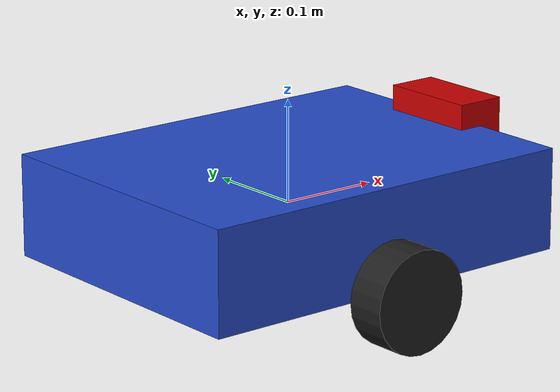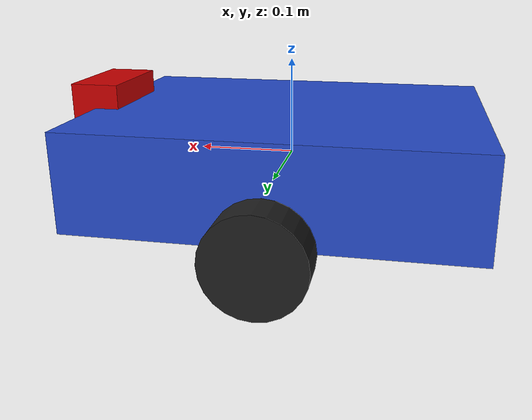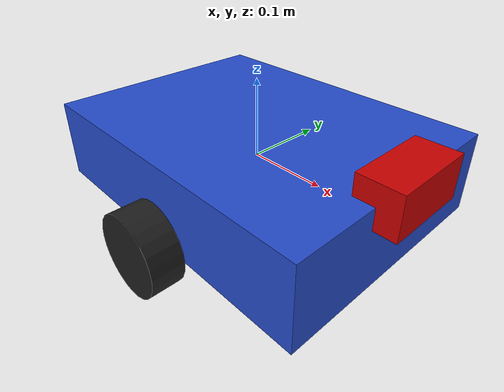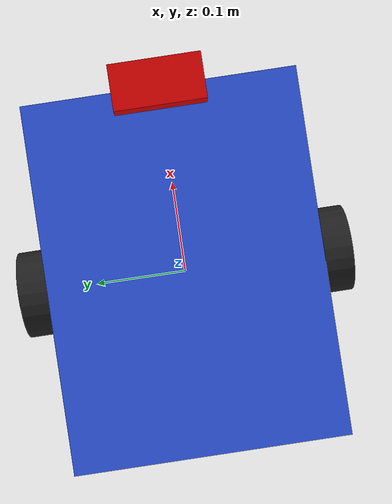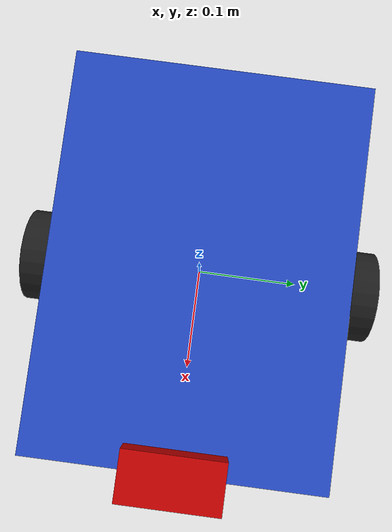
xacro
<?xml version="1.0"?>
<robot name="gesture_robot" xmlns:xacro="http://www.ros.org/wiki/xacro">

  <!-- ── Proprietà ──────────────────────────────────────────────────────── -->
  <xacro:property name="base_length"  value="0.4"/>
  <xacro:property name="base_width"   value="0.3"/>
  <xacro:property name="base_height"  value="0.1"/>
  <xacro:property name="wheel_radius" value="0.05"/>
  <xacro:property name="wheel_width"  value="0.04"/>

<!-- Materiale -->
  <material name="red">
    <color rgba="0.8 0.0 0.0 1.0"/>
  </material>

  <!-- Naso frontale -->
  <link name="front_marker">
    <visual>
      <geometry>
        <box size="0.05 0.1 0.05"/>
      </geometry>
      <material name="red"/>
    </visual>
  </link>

  <joint name="front_marker_joint" type="fixed">
    <parent link="base_link"/>
    <child link="front_marker"/>
    <origin xyz="${base_length/2} 0 ${base_height/2}" rpy="0 0 0"/>
  </joint>

  <!-- ── Base link ──────────────────────────────────────────────────────── -->
  <link name="base_link">
    <visual>
      <geometry>
        <box size="${base_length} ${base_width} ${base_height}"/>
      </geometry>
      <material name="blue"/>
    </visual>
    <collision>
      <geometry>
        <box size="${base_length} ${base_width} ${base_height}"/>
      </geometry>
    </collision>
    <inertial>
      <mass value="1.0"/>
      <inertia ixx="0.01" ixy="0" ixz="0" iyy="0.01" iyz="0" izz="0.01"/>
    </inertial>
  </link>

  <!-- ── Ruota sinistra ─────────────────────────────────────────────────── -->
  <link name="left_wheel">
    <visual>
      <geometry>
        <cylinder radius="${wheel_radius}" length="${wheel_width}"/>
      </geometry>
      <material name="black"/>
    </visual>
    <collision>
      <geometry>
        <cylinder radius="${wheel_radius}" length="${wheel_width}"/>
      </geometry>
    </collision>
    <inertial>
      <mass value="0.1"/>
      <inertia ixx="0.001" ixy="0" ixz="0" iyy="0.001" iyz="0" izz="0.001"/>
    </inertial>
  </link>

  <gazebo reference="left_wheel">
      <mu1>10.0</mu1>
      <mu2>10.0</mu2>
      <kp>1000000.0</kp>
      <kd>100.0</kd>
      <minDepth>0.001</minDepth>
      <maxVel>0.1</maxVel>
  </gazebo>

  <joint name="left_wheel_joint" type="continuous">
    <parent link="base_link"/>
    <child link="left_wheel"/>
    <origin xyz="0 ${base_width/2 + wheel_width/2} ${-base_height/2}" rpy="-1.5707 0 0"/>
    <axis xyz="0 0 1"/>
  </joint>

  <gazebo reference="right_wheel">
    <mu1>10.0</mu1>
    <mu2>10.0</mu2>
    <kp>1000000.0</kp>
    <kd>100.0</kd>
    <minDepth>0.001</minDepth>
    <maxVel>0.1</maxVel>
  </gazebo>

  <!-- ── Ruota destra ───────────────────────────────────────────────────── -->
  <link name="right_wheel">
    <visual>
      <geometry>
        <cylinder radius="${wheel_radius}" length="${wheel_width}"/>
      </geometry>
      <material name="black"/>
    </visual>
    <collision>
      <geometry>
        <cylinder radius="${wheel_radius}" length="${wheel_width}"/>
      </geometry>
    </collision>
    <inertial>
      <mass value="0.1"/>
      <inertia ixx="0.001" ixy="0" ixz="0" iyy="0.001" iyz="0" izz="0.001"/>
    </inertial>
  </link>

  <joint name="right_wheel_joint" type="continuous">
    <parent link="base_link"/>
    <child link="right_wheel"/>
    <origin xyz="0 ${-(base_width/2 + wheel_width/2)} ${-base_height/2}" rpy="-1.5707 0 0"/>
    <axis xyz="0 0 1"/>
  </joint>

  <!-- ── Ruotina anteriore (caster) ─────────────────────────────────────── -->
  <link name="caster_wheel">
    <visual>
      <geometry>
        <sphere radius="${wheel_radius/2}"/>
      </geometry>
      <material name="black"/>
    </visual>
    <collision>
      <geometry>
        <sphere radius="${wheel_radius/2}"/>
      </geometry>
    </collision>
  <inertial>
    <mass value="0.001"/>
    <inertia ixx="0.000001" ixy="0" ixz="0" iyy="0.000001" iyz="0" izz="0.000001"/>
  </inertial>
  </link>

  <gazebo reference="caster_wheel">
    <mu1>0.0</mu1>
    <mu2>0.0</mu2>
    <kp>1000000.0</kp>
    <kd>100.0</kd>
</gazebo>

  <joint name="caster_joint" type="fixed">
    <parent link="base_link"/>
    <child link="caster_wheel"/>
    <origin xyz="${base_length/2 - wheel_radius} 0 ${-base_height/2}"/>
  </joint>

  <!-- ── Plugin Gazebo: differential drive ──────────────────────────────── -->
  <gazebo>
    <plugin name="differential_drive_controller" filename="libgazebo_ros_diff_drive.so">
      <update_rate>30</update_rate>
      <left_joint>left_wheel_joint</left_joint>
      <right_joint>right_wheel_joint</right_joint>
      <wheel_separation>0.34</wheel_separation>
      <wheel_diameter>0.1</wheel_diameter>
      <max_wheel_torque>20</max_wheel_torque>
      <max_wheel_acceleration>1.0</max_wheel_acceleration>
      <command_topic>/cmd_vel</command_topic>
      <publish_odom>true</publish_odom>
      <publish_odom_tf>true</publish_odom_tf>
      <publish_wheel_tf>false</publish_wheel_tf>
      <odometry_topic>/odom</odometry_topic>
      <odometry_frame>odom</odometry_frame>
      <robot_base_frame>base_link</robot_base_frame>
    </plugin>
  </gazebo>

<gazebo reference="front_marker">
  <material>Gazebo/Red</material>
</gazebo>

</robot>
